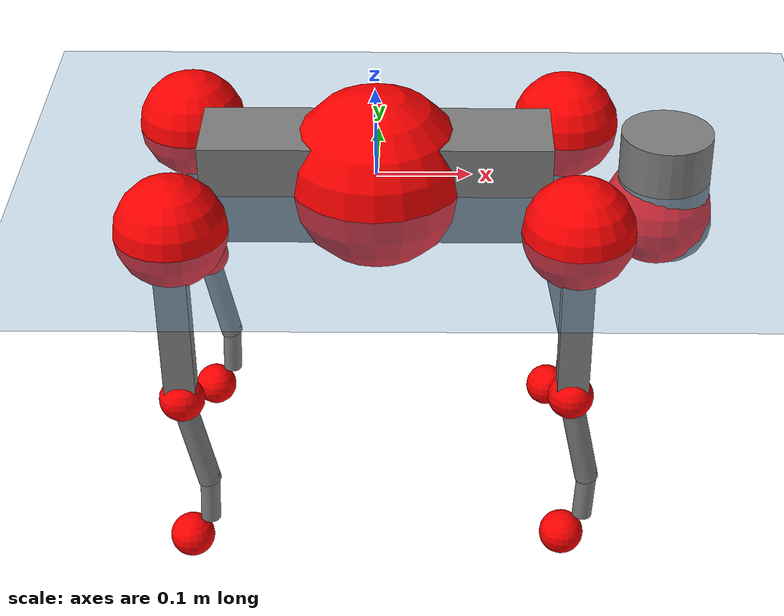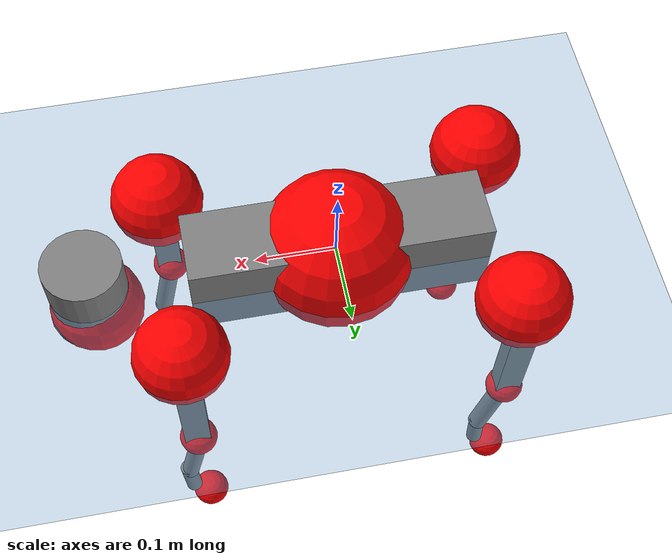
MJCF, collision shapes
<mujoco model="go2">
  <compiler angle="radian" assetdir="assets" balanceinertia="true" inertiafromgeom="false"/>

  <option timestep="0.005" density="1.2" viscosity="2e-05"/>

  <size nkey="1"/>

  <visual>
    <quality shadowsize="8192"/>
    <map shadowclip="0.5"/>
  </visual>

  <default>
    <default class="/">
      <geom contype="0" conaffinity="0" group="1" solref="-1000 -80"/>
      <site size="0.01 0.005 0.005" group="5"/>
      <general forcelimited="true" biastype="affine" gainprm="20" biasprm="0 -20 -0.5"/>
      <default class="go2">
        <joint armature="0.01" damping="0.01" frictionloss="0.2"/>
        <geom condim="1" margin="0.001"/>
        <default class="visual">
          <geom type="mesh" group="2"/>
        </default>
        <default class="collision">
          <geom group="3"/>
          <default class="foot">
            <geom size="0.022 0 0" condim="6" priority="1" friction="0.8 0.02 0.01" solimp="0.015 1 0.022"/>
          </default>
        </default>
        <default class="reward_collision_sphere">
          <geom group="5" rgba="1 0 0 1"/>
        </default>
      </default>
    </default>
  </default>

  <asset>
    <texture type="skybox" colorspace="auto" name="//unnamed_texture_0" builtin="gradient" rgb1="0.95 0.95 0.95" rgb2="0.95 0.95 0.95" width="100" height="600"/>
    <texture type="2d" colorspace="auto" name="texplane" builtin="checker" rgb1="0.345 0.575 0.748" rgb2="0.345 0.575 0.748" markrgb="1 1 1" width="512" height="512"/>
    <material name="MatPlane" class="/" texture="texplane" texuniform="true" texrepeat="2 2" specular="0.9"/>
    <material name="metal" class="/" rgba="0.9 0.95 0.95 1"/>
    <material name="black" class="/" rgba="0 0 0 1"/>
    <material name="white" class="/"/>
    <material name="gray" class="/" rgba="0.671705 0.692426 0.77427 1"/>
    <mesh name="base_0" class="/" file="base_0.obj"/>
    <mesh name="base_1" class="/" file="base_1.obj"/>
    <mesh name="base_2" class="/" file="base_2.obj"/>
    <mesh name="base_3" class="/" file="base_3.obj"/>
    <mesh name="base_4" class="/" file="base_4.obj"/>
    <mesh name="hip_0" class="/" file="hip_0.obj"/>
    <mesh name="hip_1" class="/" file="hip_1.obj"/>
    <mesh name="thigh_0" class="/" file="thigh_0.obj"/>
    <mesh name="thigh_1" class="/" file="thigh_1.obj"/>
    <mesh name="thigh_mirror_0" class="/" file="thigh_mirror_0.obj"/>
    <mesh name="thigh_mirror_1" class="/" file="thigh_mirror_1.obj"/>
    <mesh name="calf_0" class="/" file="calf_0.obj"/>
    <mesh name="calf_1" class="/" file="calf_1.obj"/>
    <mesh name="calf_mirror_0" class="/" file="calf_mirror_0.obj"/>
    <mesh name="calf_mirror_1" class="/" file="calf_mirror_1.obj"/>
    <mesh name="foot" class="/" file="foot.obj"/>
  </asset>

  <worldbody>
    <geom name="floor" class="/" size="100 100 0.125" type="plane" group="0" material="MatPlane"/>
    <light name="toplight_shadow" class="/" pos="0 0 5" dir="0.0990148 0.0990148 -0.990148" type="directional" ambient="0.04 0.04 0.04" diffuse="0.55 0.55 0.55" specular="0.12 0.12 0.12"/>
    <light name="toplight_fill" class="/" pos="0 0 5" dir="0.0990148 0.0990148 -0.990148" type="directional" castshadow="false" ambient="0.04 0.04 0.04" diffuse="0.3 0.3 0.3" specular="0.08 0.08 0.08"/>
    <body name="trunk" childclass="go2" pos="0.000402434 0.000169645 -0.00117058" quat="1 2.75011e-05 0.000387255 4.00816e-05">
      <inertial pos="0.0229937 0.000420987 -0.00496677" quat="-0.000131649 0.711274 -0.00126754 0.702914" mass="6.49922" diaginertia="0.147491 0.07943 0.0143137"/>
      <joint name="//unnamed_joint_0" type="free" armature="0" damping="0" frictionloss="0"/>
      <geom name="//unnamed_geom_1" class="visual" material="black" mesh="base_0"/>
      <geom name="//unnamed_geom_2" class="visual" material="black" mesh="base_1"/>
      <geom name="//unnamed_geom_3" class="visual" material="black" mesh="base_2"/>
      <geom name="//unnamed_geom_4" class="visual" material="white" mesh="base_3"/>
      <geom name="//unnamed_geom_5" class="visual" material="gray" mesh="base_4"/>
      <geom name="trunk_1" class="collision" size="0.182844 0.0454437 0.0554073" type="box"/>
      <geom name="trunk_2" class="collision" size="0.0486029 0.0437426" pos="0.303116 0 0.00896103" type="cylinder"/>
      <geom name="trunk_3" class="collision" size="0.0456867" pos="0.311625 0 -0.0537662"/>
      <geom name="//unnamed_geom_9" class="reward_collision_sphere" size="0.0972058"/>
      <geom name="//unnamed_geom_10" class="reward_collision_sphere" size="0.0583235" pos="0.297799 0 -0.0403246"/>
      <site name="imu" pos="-0.0248244 -0.00450886 0.0389352" size="0.00972058"/>
      <camera name="track" pos="0 -1.91301 0" quat="0.707107 0.707107 0 0" mode="trackcom"/>
      <camera name="ego_camera" pos="0.331833 0 0.0403246" quat="-0.5 -0.5 0.5 0.5"/>
      <body name="FL_hip" pos="0.204967 0.0435531 0.000865068" quat="1 9.65813e-05 0.000128814 0.000153476">
        <inertial pos="-0.00600861 0.0019591 -0.00168678" quat="0.499382 0.494808 0.507339 0.498387" mass="0.629097" diaginertia="0.00121043 0.000483153 0.000280465"/>
        <joint name="FL_hip_joint" pos="0 0 0" axis="0.999996 0.00079969 -0.0025369" range="-1.04924 1.03061" armature="0.00975151" damping="0.00556695" frictionloss="0.185262"/>
        <geom name="//unnamed_geom_11" class="visual" material="metal" mesh="hip_0"/>
        <geom name="//unnamed_geom_12" class="visual" material="gray" mesh="hip_1"/>
        <geom name="//unnamed_geom_13" class="collision" size="0.0447146 0.0194412" pos="0 0.0765202 0" quat="0.707107 0.707107 0 0" type="cylinder"/>
        <geom name="//unnamed_geom_14" class="reward_collision_sphere" size="0.0583235" pos="0 0.0669552 0"/>
        <body name="FL_thigh" pos="-0.000817081 0.0901671 0.00197726" quat="1 0.000181013 0.000117886 7.24734e-05">
          <inertial pos="-0.00389797 -0.0211235 -0.0287687" quat="0.829842 0.0856775 -0.0208074 0.550989" mass="1.05759" diaginertia="0.00810645 0.00466039 0.000506051"/>
          <joint name="FL_thigh_joint" pos="0 0 0" axis="0.00171108 0.999966 -0.00805776" stiffness="0.00219014" range="-1.5511 3.48815" armature="0.00992151" damping="0.0052451" frictionloss="0.194449"/>
          <geom name="//unnamed_geom_15" class="visual" material="metal" mesh="thigh_0"/>
          <geom name="//unnamed_geom_16" class="visual" material="gray" mesh="thigh_1"/>
          <geom name="//unnamed_geom_17" class="collision" size="0.103524 0.0119077 0.016525" pos="0 0 -0.095435" quat="0.707107 0 0.707107 0" type="box"/>
          <body name="FL_calf" pos="-0.000971871 -0.000443285 -0.190593" quat="1 -6.8185e-05 4.68797e-05 -6.34902e-05">
            <inertial pos="0.0051762 -0.00129565 -0.1264" quat="0.710378 0.00259668 -0.00346162 0.703807" mass="0.223122" diaginertia="0.0020185 0.00117884 3.07485e-05"/>
            <joint name="FL_calf_joint" pos="0 0 0" axis="0.00106295 0.999999 -0.00111862" stiffness="0.00610981" range="-2.75592 -0.854823" armature="0.00956197" damping="0.0100635" frictionloss="0.20731"/>
            <geom name="//unnamed_geom_18" class="visual" material="gray" mesh="calf_0"/>
            <geom name="//unnamed_geom_19" class="visual" material="black" mesh="calf_1"/>
            <geom name="FL_calf0" class="collision" size="0.0116647 0.0583235" pos="0.00850853 0 -0.0537662" quat="0.994493 0 -0.104807 0" type="cylinder"/>
            <geom name="//unnamed_geom_21" class="collision" size="0.0106926 0.0315919" pos="0.0212713 0 -0.132623" quat="0.999688 0 0.0249974 0" type="cylinder"/>
            <geom name="//unnamed_geom_22" class="visual" pos="0 0 -0.19087" quat="1 0 0 0" material="black" mesh="foot"/>
            <geom name="FL_foot" class="foot" size="0.0174927" pos="-0.00212713 0 -0.19087"/>
            <geom name="//unnamed_geom_24" class="reward_collision_sphere" size="0.0243014"/>
            <geom name="//unnamed_geom_25" class="reward_collision_sphere" size="0.0243014" pos="-0.00212713 0 -0.19087"/>
            <site name="FL_foot" class="foot" pos="-0.00212713 0 -0.19087" size="0.00972058"/>
          </body>
        </body>
      </body>
      <body name="FR_hip" pos="0.206244 -0.0444983 -0.00035914" quat="1 0.000555275 -0.000521412 0.0001392">
        <inertial pos="-0.00525891 -0.00162536 -0.00077417" quat="0.49591 0.502921 0.504448 0.496665" mass="0.634294" diaginertia="0.00121417 0.000479277 0.000279767"/>
        <joint name="FR_hip_joint" pos="0 0 0" axis="0.999997 0.00028878 -0.00226471" range="-1.07103 1.06868" armature="0.00978588" damping="0.0128886" frictionloss="0.187112"/>
        <geom name="//unnamed_geom_26" class="visual" pos="0 5.26177e-10 2.25688e-08" quat="4.63268e-05 1 0 0" material="metal" mesh="hip_0"/>
        <geom name="//unnamed_geom_27" class="visual" pos="0 8.52995e-10 -5.58213e-08" quat="4.63268e-05 1 0 0" material="gray" mesh="hip_1"/>
        <geom name="//unnamed_geom_28" class="collision" size="0.0447146 0.0194412" pos="0 -0.0765202 0" quat="0.707107 0.707107 0 0" type="cylinder"/>
        <geom name="//unnamed_geom_29" class="reward_collision_sphere" size="0.0583235" pos="0 -0.0669552 0"/>
        <body name="FR_thigh" pos="9.00239e-05 -0.0905906 0.00212368" quat="1 -0.000110153 0.000203549 0.00030449">
          <inertial pos="-0.00375009 0.0210899 -0.0285212" quat="0.551749 -0.0201071 0.0848698 0.829437" mass="1.05388" diaginertia="0.00805971 0.00467636 0.000502133"/>
          <joint name="FR_thigh_joint" pos="0 0 0" axis="0.00395313 -0.999989 -0.00261748" stiffness="0.00136346" range="-3.49 1.5875" armature="0.0101526" damping="0.0064492" frictionloss="0.1961"/>
          <geom name="//unnamed_geom_30" class="visual" material="metal" mesh="thigh_mirror_0"/>
          <geom name="//unnamed_geom_31" class="visual" material="gray" mesh="thigh_mirror_1"/>
          <geom name="//unnamed_geom_32" class="collision" size="0.103524 0.0119077 0.016525" pos="0 0 -0.095435" quat="0.707107 0 0.707107 0" type="box"/>
          <body name="FR_calf" pos="-0.00106205 0.000280774 -0.190702" quat="1 -7.96466e-05 -0.000203489 5.79418e-05">
            <inertial pos="0.0063572 0.000110703 -0.126891" quat="0.699599 -0.00853489 -0.000494185 0.714485" mass="0.21835" diaginertia="0.00201552 0.00116713 3.07424e-05"/>
            <joint name="FR_calf_joint" pos="0 0 0" axis="-0.0001798 -1 0.000472185" range="0.839115 2.72104" armature="0.00962917" damping="0.00489989" frictionloss="0.203603"/>
            <geom name="//unnamed_geom_33" class="visual" material="gray" mesh="calf_mirror_0"/>
            <geom name="//unnamed_geom_34" class="visual" material="black" mesh="calf_mirror_1"/>
            <geom name="FR_calf0" class="collision" size="0.0126367 0.0583235" pos="0.0106357 0 -0.0537662" quat="0.995004 0 -0.0998334 0" type="cylinder"/>
            <geom name="//unnamed_geom_36" class="collision" size="0.0106926 0.0315919" pos="0.0212713 0 -0.132623" quat="0.999688 0 0.0249974 0" type="cylinder"/>
            <geom name="//unnamed_geom_37" class="visual" pos="0 0 -0.19087" quat="1 0 0 0" material="black" mesh="foot"/>
            <geom name="FR_foot" class="foot" size="0.021347" pos="-0.00212713 0 -0.19087"/>
            <geom name="//unnamed_geom_39" class="reward_collision_sphere" size="0.0243014"/>
            <geom name="//unnamed_geom_40" class="reward_collision_sphere" size="0.0243014" pos="-0.00212713 0 -0.19087"/>
            <site name="FR_foot" class="foot" pos="-0.00212713 0 -0.19087" size="0.00972058"/>
          </body>
        </body>
      </body>
      <body name="RL_hip" pos="-0.206093 0.0450361 0.000922362" quat="1 -0.000102586 2.78358e-05 -6.65613e-05">
        <inertial pos="0.00582463 0.0018974 -0.00111992" quat="0.504168 0.500391 0.498165 0.497247" mass="0.62769" diaginertia="0.0012308 0.000478285 0.000281386"/>
        <joint name="RL_hip_joint" pos="0 0 0" axis="-0.999805 0.0174772 -0.00923437" stiffness="0.00354446" range="-1.05621 1.05875" armature="0.00981317" damping="0.0122906" frictionloss="0.195536"/>
        <geom name="//unnamed_geom_41" class="visual" pos="-1.45887e-09 0 -2.85972e-07" quat="4.63268e-05 0 1 0" material="metal" mesh="hip_0"/>
        <geom name="//unnamed_geom_42" class="visual" pos="-2.36501e-09 0 -2.53617e-07" quat="4.63268e-05 0 1 0" material="gray" mesh="hip_1"/>
        <geom name="//unnamed_geom_43" class="collision" size="0.0447146 0.0194412" pos="0 0.0765202 0" quat="0.707107 0.707107 0 0" type="cylinder"/>
        <geom name="//unnamed_geom_44" class="reward_collision_sphere" size="0.0583235" pos="0 0.0669552 0"/>
        <body name="RL_thigh" pos="0.000738171 0.0902579 0.00098078" quat="1 -0.00018283 -5.74521e-05 8.9082e-05">
          <inertial pos="-0.00246163 -0.020667 -0.030643" quat="0.829498 0.0846611 -0.0202618 0.551684" mass="1.08304" diaginertia="0.0083389 0.00479813 0.000513785"/>
          <joint name="RL_thigh_joint" pos="0 0 0" axis="0.00958525 0.999932 0.00662295" range="-0.508401 4.5344" armature="0.00962091" damping="0.000994641" frictionloss="0.185901"/>
          <geom name="//unnamed_geom_45" class="visual" material="metal" mesh="thigh_0"/>
          <geom name="//unnamed_geom_46" class="visual" material="gray" mesh="thigh_1"/>
          <geom name="//unnamed_geom_47" class="collision" size="0.103524 0.0119077 0.016525" pos="0 0 -0.095435" quat="0.707107 0 0.707107 0" type="box"/>
          <body name="RL_calf" pos="4.54756e-05 -0.00130312 -0.19072" quat="1 0.000178252 -8.7838e-05 -2.61191e-05">
            <inertial pos="0.00559095 -0.000865893 -0.128119" quat="0.710675 -0.00141219 -0.00488338 0.703502" mass="0.222317" diaginertia="0.00203834 0.00119342 3.05948e-05"/>
            <joint name="RL_calf_joint" pos="0 0 0" axis="-0.00965461 0.999951 0.00236831" range="-2.71219 -0.868195" armature="0.00998563" damping="0" frictionloss="0.195925"/>
            <geom name="//unnamed_geom_48" class="visual" material="gray" mesh="calf_0"/>
            <geom name="//unnamed_geom_49" class="visual" material="black" mesh="calf_1"/>
            <geom name="RL_calf0" class="collision" size="0.0126367 0.0583235" pos="0.0106357 0 -0.0537662" quat="0.995004 0 -0.0998334 0" type="cylinder"/>
            <geom name="//unnamed_geom_51" class="collision" size="0.0106926 0.0315919" pos="0.0212713 0 -0.132623" quat="0.999688 0 0.0249974 0" type="cylinder"/>
            <geom name="//unnamed_geom_52" class="visual" pos="0 0 -0.19087" quat="1 0 0 0" material="black" mesh="foot"/>
            <geom name="RL_foot" class="foot" size="0.0189386" pos="-0.00212713 0 -0.19087"/>
            <geom name="//unnamed_geom_54" class="reward_collision_sphere" size="0.0243014"/>
            <geom name="//unnamed_geom_55" class="reward_collision_sphere" size="0.0243014" pos="-0.00212713 0 -0.19087"/>
            <site name="RL_foot" class="foot" pos="-0.00212713 0 -0.19087" size="0.00972058"/>
          </body>
        </body>
      </body>
      <body name="RR_hip" pos="-0.204514 -0.0452148 0.000979194" quat="1 9.6389e-05 -7.46393e-05 0.000209185">
        <inertial pos="0.00585615 -0.00104382 0.000219758" quat="0.500813 0.495862 0.496076 0.507165" mass="0.619393" diaginertia="0.00123445 0.000483297 0.000278077"/>
        <joint name="RR_hip_joint" pos="0 0 0" axis="-0.999972 0.00472203 0.00587904" range="-1.03022 1.04767" armature="0.00974797" damping="0.00101512" frictionloss="0.208596"/>
        <geom name="//unnamed_geom_56" class="visual" pos="1.45516e-09 5.26177e-10 -3.08541e-07" quat="2.14617e-09 4.63268e-05 4.63268e-05 -1" material="metal" mesh="hip_0"/>
        <geom name="//unnamed_geom_57" class="visual" pos="2.37417e-09 8.52995e-10 -1.97796e-07" quat="2.14617e-09 4.63268e-05 4.63268e-05 -1" material="gray" mesh="hip_1"/>
        <geom name="//unnamed_geom_58" class="collision" size="0.0447146 0.0194412" pos="0 -0.0765202 0" quat="0.707107 0.707107 0 0" type="cylinder"/>
        <geom name="//unnamed_geom_59" class="reward_collision_sphere" size="0.0583235" pos="0 -0.0669552 0"/>
        <body name="RR_thigh" pos="-0.000233428 -0.0921411 -0.00150836" quat="1 0.000114525 0.000235232 -0.000298306">
          <inertial pos="-0.00340367 0.0222784 -0.0308446" quat="0.550592 -0.0168709 0.0858054 0.830182" mass="1.04293" diaginertia="0.00814756 0.00467986 0.000510976"/>
          <joint name="RR_thigh_joint" pos="0 0 0" axis="-0.000888022 -1 -0.000324803" range="-4.5381 0.530228" armature="0.00985894" damping="0.022433" frictionloss="0.19368"/>
          <geom name="//unnamed_geom_60" class="visual" material="metal" mesh="thigh_mirror_0"/>
          <geom name="//unnamed_geom_61" class="visual" material="gray" mesh="thigh_mirror_1"/>
          <geom name="//unnamed_geom_62" class="collision" size="0.103524 0.0119077 0.016525" pos="0 0 -0.095435" quat="0.707107 0 0.707107 0" type="box"/>
          <body name="RR_calf" pos="0.000295614 -0.00030331 -0.192233" quat="1 6.06239e-05 -0.000403472 -0.000549971">
            <inertial pos="0.00635858 0.000808938 -0.126875" quat="0.704282 -0.00208454 0.00354255 0.709909" mass="0.218029" diaginertia="0.00199312 0.00114544 3.00689e-05"/>
            <joint name="RR_calf_joint" pos="0 0 0" axis="0.00944023 -0.999952 -0.00278913" range="0.845526 2.72252" armature="0.00982716" damping="0.00658027" frictionloss="0.194587"/>
            <geom name="//unnamed_geom_63" class="visual" material="gray" mesh="calf_mirror_0"/>
            <geom name="//unnamed_geom_64" class="visual" material="black" mesh="calf_mirror_1"/>
            <geom name="RR_calf0" class="collision" size="0.0126367 0.0583235" pos="0.0106357 0 -0.0537662" quat="0.995004 0 -0.0998334 0" type="cylinder"/>
            <geom name="//unnamed_geom_66" class="collision" size="0.0106926 0.0315919" pos="0.0212713 0 -0.132623" quat="0.999688 0 0.0249974 0" type="cylinder"/>
            <geom name="//unnamed_geom_67" class="visual" pos="0 0 -0.19087" quat="1 0 0 0" material="black" mesh="foot"/>
            <geom name="RR_foot" class="foot" size="0.0227778" pos="-0.00212713 0 -0.19087"/>
            <geom name="//unnamed_geom_69" class="reward_collision_sphere" size="0.0243014"/>
            <geom name="//unnamed_geom_70" class="reward_collision_sphere" size="0.0243014" pos="-0.00212713 0 -0.19087"/>
            <site name="RR_foot" class="foot" pos="-0.00212713 0 -0.19087" size="0.00972058"/>
          </body>
        </body>
      </body>
    </body>
  </worldbody>

  <contact>
    <pair class="/" geom1="floor" geom2="FL_foot" name="//unnamed_contact_0"/>
    <pair class="/" geom1="floor" geom2="FR_foot" name="//unnamed_contact_1"/>
    <pair class="/" geom1="floor" geom2="RL_foot" name="//unnamed_contact_2"/>
    <pair class="/" geom1="floor" geom2="RR_foot" name="//unnamed_contact_3"/>
  </contact>

  <actuator>
    <general name="FL_hip" class="/" joint="FL_hip_joint" forcerange="-23.198 23.198" gainprm="19.7188" biasprm="0 -19.7188 -0.490259"/>
    <general name="FL_thigh" class="/" joint="FL_thigh_joint" forcerange="-23.4696 23.4696" gainprm="19.7188" biasprm="0 -19.7188 -0.490259"/>
    <general name="FL_calf" class="/" joint="FL_calf_joint" forcerange="-42.4904 42.4904" gainprm="19.7188" biasprm="0 -19.7188 -0.490259"/>
    <general name="FR_hip" class="/" joint="FR_hip_joint" forcerange="-22.5243 22.5243" gainprm="19.7188" biasprm="0 -19.7188 -0.490259"/>
    <general name="FR_thigh" class="/" joint="FR_thigh_joint" forcerange="-22.1753 22.1753" gainprm="19.7188" biasprm="0 -19.7188 -0.490259"/>
    <general name="FR_calf" class="/" joint="FR_calf_joint" forcerange="-43.6212 43.6212" gainprm="19.7188" biasprm="0 -19.7188 -0.490259"/>
    <general name="RL_hip" class="/" joint="RL_hip_joint" forcerange="-22.9856 22.9856" gainprm="19.7188" biasprm="0 -19.7188 -0.490259"/>
    <general name="RL_thigh" class="/" joint="RL_thigh_joint" forcerange="-22.143 22.143" gainprm="19.7188" biasprm="0 -19.7188 -0.490259"/>
    <general name="RL_calf" class="/" joint="RL_calf_joint" forcerange="-44.9955 44.9955" gainprm="19.7188" biasprm="0 -19.7188 -0.490259"/>
    <general name="RR_hip" class="/" joint="RR_hip_joint" forcerange="-22.9973 22.9973" gainprm="19.7188" biasprm="0 -19.7188 -0.490259"/>
    <general name="RR_thigh" class="/" joint="RR_thigh_joint" forcerange="-23.4662 23.4662" gainprm="19.7188" biasprm="0 -19.7188 -0.490259"/>
    <general name="RR_calf" class="/" joint="RR_calf_joint" forcerange="-42.9572 42.9572" gainprm="19.7188" biasprm="0 -19.7188 -0.490259"/>
  </actuator>

  <sensor>
    <gyro site="imu" name="imu_angular_velocity"/>
    <velocimeter site="imu" name="imu_linear_velocity"/>
    <framelinvel objtype="site" objname="FL_foot" name="FL_foot_global_linear_velocity"/>
    <framelinvel objtype="site" objname="FR_foot" name="FR_foot_global_linear_velocity"/>
    <framelinvel objtype="site" objname="RL_foot" name="RL_foot_global_linear_velocity"/>
    <framelinvel objtype="site" objname="RR_foot" name="RR_foot_global_linear_velocity"/>
  </sensor>

  <keyframe>
    <key name="home" qpos="0 0 0.325 1 0 0 0 0.1 0.8 -1.5 -0.1 -0.8 1.5 -0.1 0.8 -1.5 0.1 -0.8 1.5"/>
  </keyframe>
</mujoco>
